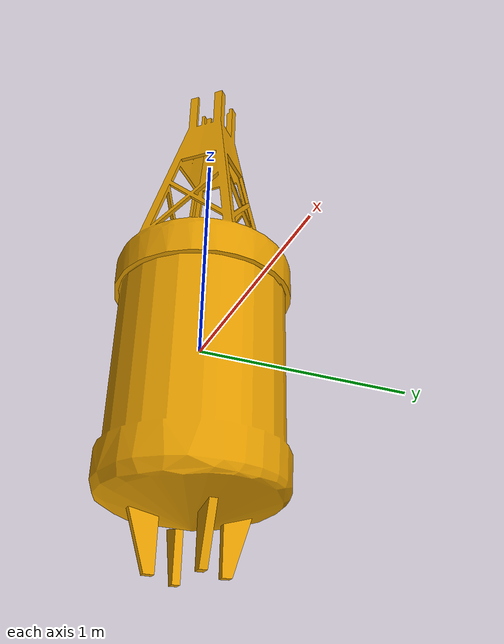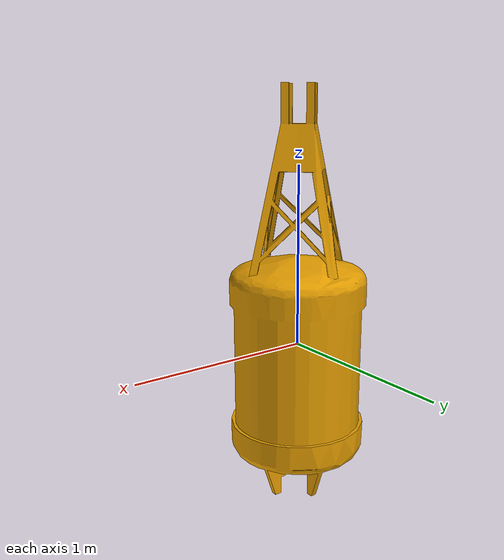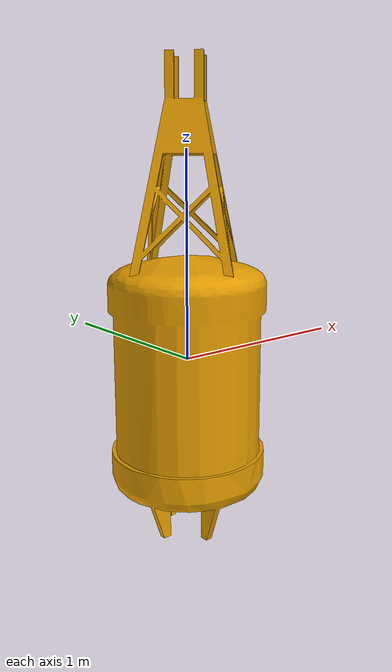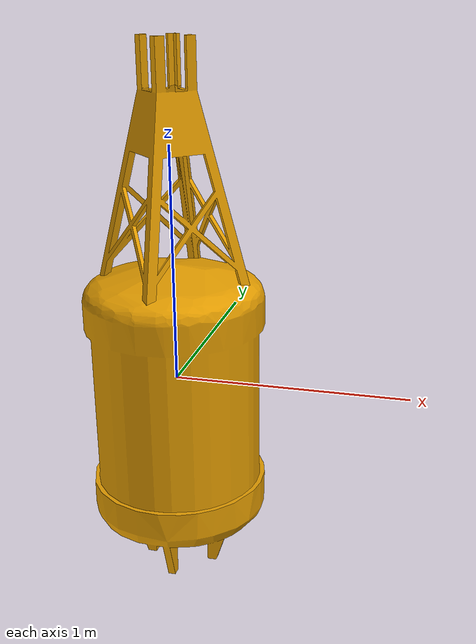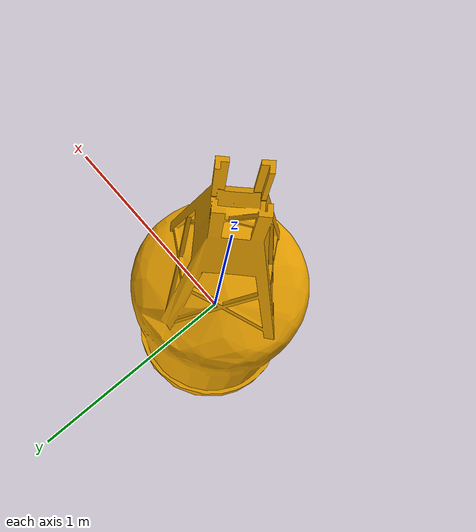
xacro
<?xml version="1.0"?>

<robot name="buoy">
  <link name="link">
    <visual>
      <origin rpy="0 0 0" xyz="0 0 0.25"/>
      <geometry>
          <mesh filename="package://usv_sim/meshes/buoy2highPoly.dae" scale="0.5 0.5 0.5"/>
      </geometry>
    </visual>
    <inertial>
      <origin rpy="0 0 0" xyz="0 0 0"/>
      <mass value="5.0"/>
      <inertia ixx="1" ixy="0.0" ixz="0.0" iyy="1" iyz="0" izz="1"/>
    </inertial>
    <collision>
      <origin rpy="0 0 0" xyz="0 0 0.25"/>
     <geometry>
          <mesh filename="package://usv_sim/meshes/buoy2highPoly.dae" scale="0.5 0.5 0.5"/>
      </geometry>
    </collision>
		<buoyancy>
        	<compensation>10</compensation>
          	<origin xyz="0 0 0.05"/>
          	<limit radius="0.25"/>
          	<damping rpy="20 20 20" xyz="100 100 50"/>
	  	  	<fluidVelocity>none</fluidVelocity>
	  	  	<windVelocity>none</windVelocity>
        </buoyancy>
  </link>
</robot>
